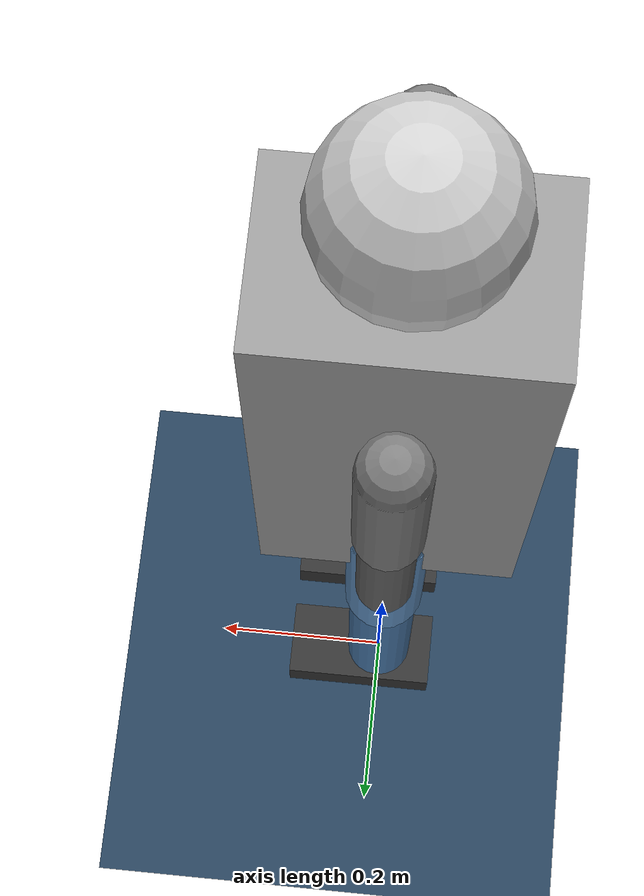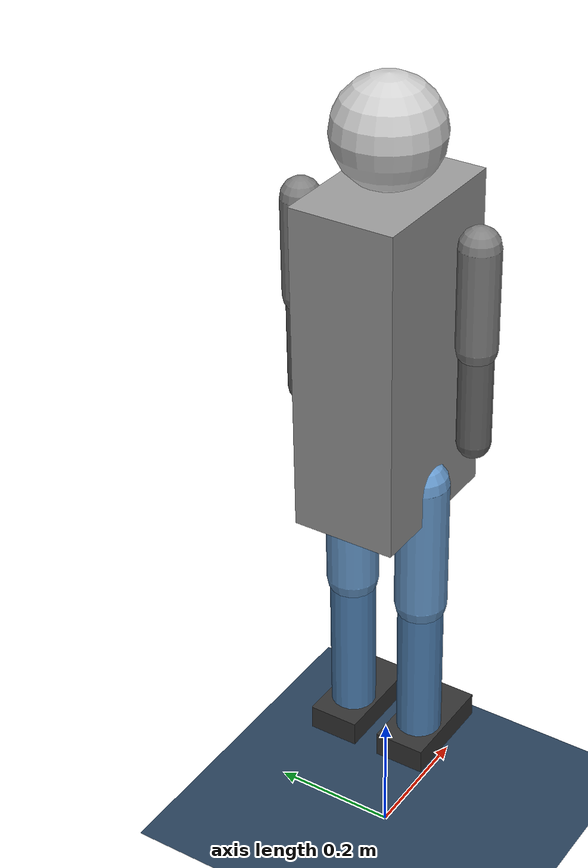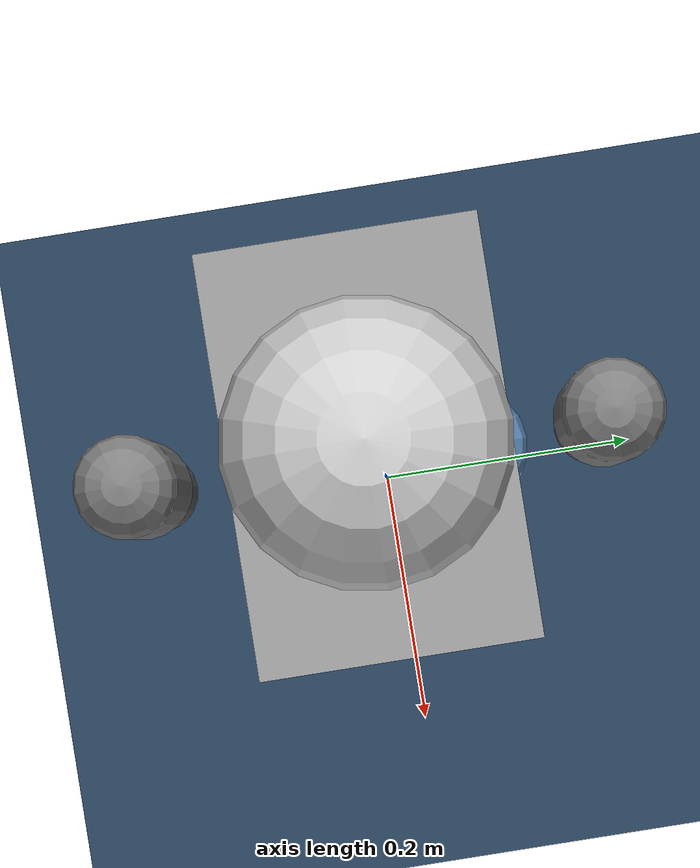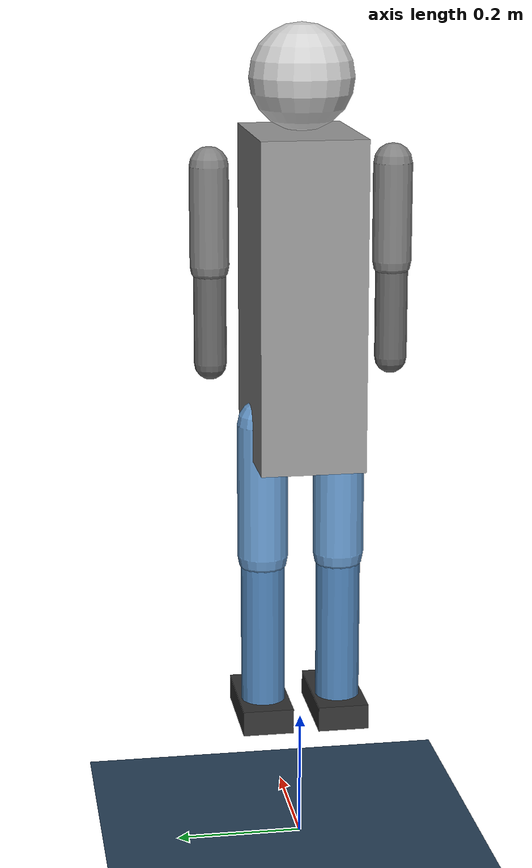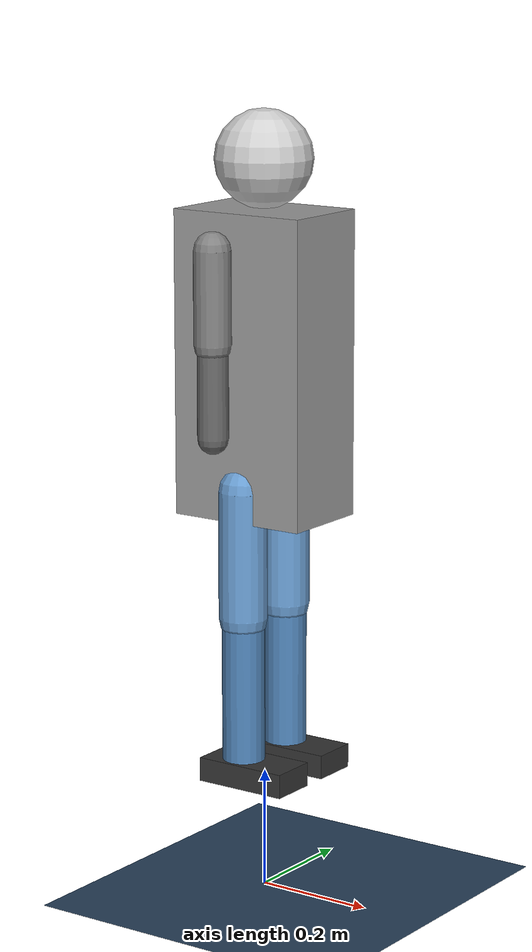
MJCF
<?xml version="1.0"?>
<mujoco model="simple_humanoid">
  <option timestep="0.002" iterations="50" solver="Newton" gravity="0 0 -9.81"/>

  <asset>
    <texture name="texplane" type="2d" builtin="checker" rgb1="0.2 0.3 0.4" rgb2="0.1 0.2 0.3" width="512" height="512"/>
    <material name="matplane" reflectance="0.3" texture="texplane" texrepeat="1 1"/>
  </asset>

  <worldbody>
    <!-- Ground plane -->
    <geom name="floor" type="plane" size="10 10 0.1" material="matplane"/>
    <light directional="true" diffuse="0.8 0.8 0.8" pos="0 0 5" dir="0 0 -1"/>

    <!-- Floating base humanoid robot -->
    <body name="torso" pos="0 0 0.89">
      <freejoint name="root"/>
      <geom name="torso_geom" type="box" size="0.12 0.08 0.25" mass="5.0" rgba="0.6 0.6 0.6 1"/>
      <geom name="head" type="sphere" size="0.08" pos="0 0 0.33" mass="1.0" rgba="0.8 0.8 0.8 1"/>

      <!-- Left leg -->
      <body name="left_hip" pos="0 0.06 -0.20">
        <inertial pos="0 0 0" mass="0.1" diaginertia="0.001 0.001 0.001"/>
        <joint name="left_hip_yaw" type="hinge" axis="0 0 1" range="-0.5 0.5"/>
        <body name="left_hip2" pos="0 0 0">
          <inertial pos="0 0 0" mass="0.1" diaginertia="0.001 0.001 0.001"/>
          <joint name="left_hip_roll" type="hinge" axis="0 1 0" range="-0.3 0.8"/>
          <body name="left_hip3" pos="0 0 0">
            <inertial pos="0 0 0" mass="0.1" diaginertia="0.001 0.001 0.001"/>
            <joint name="left_hip_pitch" type="hinge" axis="1 0 0" range="-1.57 1.57"/>
            <geom name="left_thigh" type="capsule" size="0.04" fromto="0 0 0 0 0 -0.212" mass="1.5" rgba="0.4 0.6 0.8 1"/>

            <body name="left_knee" pos="0 0 -0.212">
              <joint name="left_knee" type="hinge" axis="1 0 0" range="0 2.5"/>
              <geom name="left_shin" type="capsule" size="0.035" fromto="0 0 0 0 0 -0.240" mass="1.0" rgba="0.3 0.5 0.7 1"/>

              <body name="left_ankle" pos="0 0 -0.240">
                <joint name="left_ankle" type="hinge" axis="1 0 0" range="-0.7 0.7"/>
                <geom name="left_foot" type="box" size="0.08 0.04 0.02" pos="0.02 0 -0.02" mass="0.5" rgba="0.2 0.2 0.2 1"/>
              </body>
            </body>
          </body>
        </body>
      </body>

      <!-- Right leg -->
      <body name="right_hip" pos="0 -0.06 -0.20">
        <inertial pos="0 0 0" mass="0.1" diaginertia="0.001 0.001 0.001"/>
        <joint name="right_hip_yaw" type="hinge" axis="0 0 1" range="-0.5 0.5"/>
        <body name="right_hip2" pos="0 0 0">
          <inertial pos="0 0 0" mass="0.1" diaginertia="0.001 0.001 0.001"/>
          <joint name="right_hip_roll" type="hinge" axis="0 1 0" range="-0.8 0.3"/>
          <body name="right_hip3" pos="0 0 0">
            <inertial pos="0 0 0" mass="0.1" diaginertia="0.001 0.001 0.001"/>
            <joint name="right_hip_pitch" type="hinge" axis="1 0 0" range="-1.57 1.57"/>
            <geom name="right_thigh" type="capsule" size="0.04" fromto="0 0 0 0 0 -0.212" mass="1.5" rgba="0.4 0.6 0.8 1"/>

            <body name="right_knee" pos="0 0 -0.212">
              <joint name="right_knee" type="hinge" axis="1 0 0" range="0 2.5"/>
              <geom name="right_shin" type="capsule" size="0.035" fromto="0 0 0 0 0 -0.240" mass="1.0" rgba="0.3 0.5 0.7 1"/>

              <body name="right_ankle" pos="0 0 -0.240">
                <joint name="right_ankle" type="hinge" axis="1 0 0" range="-0.7 0.7"/>
                <geom name="right_foot" type="box" size="0.08 0.04 0.02" pos="0.02 0 -0.02" mass="0.5" rgba="0.2 0.2 0.2 1"/>
              </body>
            </body>
          </body>
        </body>
      </body>

      <!-- Left arm -->
      <body name="left_shoulder" pos="0 0.14 0.20">
        <joint name="left_shoulder_pitch" type="hinge" axis="1 0 0" range="-2.0 2.0"/>
        <geom name="left_upper_arm" type="capsule" size="0.03" fromto="0 0 0 0 0 -0.15" mass="0.5" rgba="0.5 0.5 0.5 1"/>
        <body name="left_elbow" pos="0 0 -0.15">
          <joint name="left_elbow" type="hinge" axis="1 0 0" range="0 2.5"/>
          <geom name="left_forearm" type="capsule" size="0.025" fromto="0 0 0 0 0 -0.15" mass="0.3" rgba="0.4 0.4 0.4 1"/>
        </body>
      </body>

      <!-- Right arm -->
      <body name="right_shoulder" pos="0 -0.14 0.20">
        <joint name="right_shoulder_pitch" type="hinge" axis="1 0 0" range="-2.0 2.0"/>
        <geom name="right_upper_arm" type="capsule" size="0.03" fromto="0 0 0 0 0 -0.15" mass="0.5" rgba="0.5 0.5 0.5 1"/>
        <body name="right_elbow" pos="0 0 -0.15">
          <joint name="right_elbow" type="hinge" axis="1 0 0" range="0 2.5"/>
          <geom name="right_forearm" type="capsule" size="0.025" fromto="0 0 0 0 0 -0.15" mass="0.3" rgba="0.4 0.4 0.4 1"/>
        </body>
      </body>
    </body>
  </worldbody>

  <!-- Actuators -->
  <actuator>
    <!-- Legs -->
    <position name="left_hip_yaw_act" joint="left_hip_yaw" kp="100"/>
    <position name="left_hip_roll_act" joint="left_hip_roll" kp="100"/>
    <position name="left_hip_pitch_act" joint="left_hip_pitch" kp="100"/>
    <position name="left_knee_act" joint="left_knee" kp="100"/>
    <position name="left_ankle_act" joint="left_ankle" kp="100"/>

    <position name="right_hip_yaw_act" joint="right_hip_yaw" kp="100"/>
    <position name="right_hip_roll_act" joint="right_hip_roll" kp="100"/>
    <position name="right_hip_pitch_act" joint="right_hip_pitch" kp="100"/>
    <position name="right_knee_act" joint="right_knee" kp="100"/>
    <position name="right_ankle_act" joint="right_ankle" kp="100"/>

    <!-- Arms -->
    <position name="left_shoulder_act" joint="left_shoulder_pitch" kp="50"/>
    <position name="left_elbow_act" joint="left_elbow" kp="50"/>
    <position name="right_shoulder_act" joint="right_shoulder_pitch" kp="50"/>
    <position name="right_elbow_act" joint="right_elbow" kp="50"/>
  </actuator>
</mujoco>
